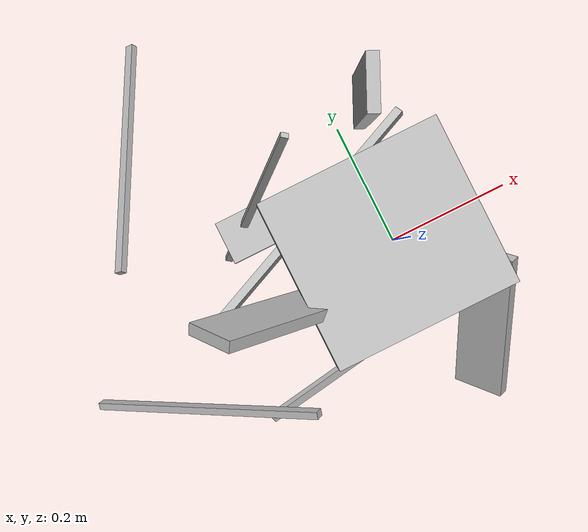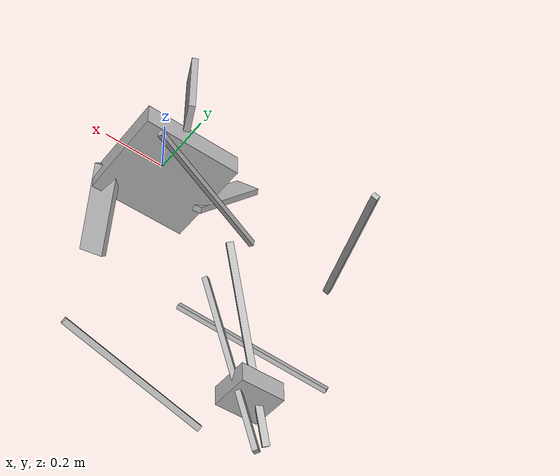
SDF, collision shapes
<?xml version="1.0" ?>
<sdf version="1.11">
  <model name="test_v7">
    <link name="base_link">
      <inertial>
        <mass>0.0001</mass>
        <inertia>
          <ixx>1e-09</ixx>
          <ixy>0</ixy>
          <ixz>0</ixz>
          <iyy>1e-09</iyy>
          <iyz>0</iyz>
          <izz>1e-09</izz>
        </inertia>
      </inertial>
    </link>
    <link name="base_link_1">
      <inertial>
        <pose>-0.006003070239091151 0.004674496431452058 -0.028233711884857057 0.0 -0.0 0.0</pose>
        <mass>18.042889875355606</mass>
        <inertia>
          <ixx>0.32440273261796404</ixx>
          <ixy>0.008885205922189693</ixy>
          <ixz>-0.02922011000023445</ixz>
          <iyy>0.3314487164427661</iyy>
          <iyz>0.02295002069471524</iyz>
          <izz>0.32271939533932287</izz>
        </inertia>
      </inertial>
      <visual name="base_link_1__body1_visual">
        <geometry>
          <mesh>
            <scale>0.01 0.01 0.01</scale>
            <uri>meshes/base_link_1/body1_visual.obj</uri>
          </mesh>
        </geometry>
      </visual>
      <collision name="base_link_1__body1_collision">
        <pose relative_to="__model__">-0.011093384856898965 0.0 -0.018000000000000002 -0.0 -1.5707963267948966 0</pose>
        <geometry>
          <box>
            <size>0.07600000000000001 0.3 0.32218676971379795</size>
          </box>
        </geometry>
      </collision>
    </link>
    <link name="base_link_1__first_link_a_1">
      <pose relative_to="__model__">0.0814330700157758 0.04701739966892985 -0.015591272532809205 -1.9972275391609096 6.511982082116048e-17 -1.0471975511965983</pose>
      <inertial>
        <pose>-0.034561370372242384 0.1131097599215081 0.17371262320711608 2.308352009621695 -0.9083188421056868 -0.6216601231088564</pose>
        <mass>0.5295834259959955</mass>
        <inertia>
          <ixx>0.010106684200346501</ixx>
          <ixy>-0.0008924610461276596</ixy>
          <ixz>-0.005906382607940689</ixz>
          <iyy>0.01613180412087601</iyy>
          <iyz>0.0002624226121057376</iyz>
          <izz>0.00782340454827245</izz>
        </inertia>
      </inertial>
      <visual name="base_link_1__first_link_a_1__body1_visual">
        <geometry>
          <mesh>
            <scale>0.01 0.01 0.01</scale>
            <uri>meshes/base_link_1/first_link_a_1/body1_visual.obj</uri>
          </mesh>
        </geometry>
      </visual>
      <collision name="base_link_1__first_link_a_1__body1_collision">
        <pose relative_to="__model__">0.21424234282929158 0.10489763530089298 -0.07875696493056726 -3.007881143079345 -1.1276749179351533 0.8170661562990996</pose>
        <geometry>
          <box>
            <size>0.019999999999999997 0.08868332403876587 0.27027085362224523</size>
          </box>
        </geometry>
      </collision>
    </link>
    <link name="base_link_1__first_link_a_1__second_link_a_1">
      <pose relative_to="__model__">-0.10290090997842143 0.06792782431931448 -0.4898391177689064 -0.25767012141722895 -0.03234384727327745 1.7652724581532457</pose>
      <inertial>
        <pose>4.252839792134866e-09 -0.281928808198703 0.13052977998059853 -0.08251161845466903 0.24646921532617458 -1.7713076571243385</pose>
        <mass>0.1360043182050376</mass>
        <inertia>
          <ixx>0.0016541566286163625</ixx>
          <ixy>-0.0003775806899707331</ixy>
          <ixz>-0.0018820979831205916</ixz>
          <iyy>0.003822382296894347</iyy>
          <iyz>-0.00031838039889015447</iyz>
          <izz>0.002299437313748748</izz>
        </inertia>
      </inertial>
      <visual name="base_link_1__first_link_a_1__second_link_a_1__body1_visual">
        <geometry>
          <mesh>
            <scale>0.01 0.01 0.01</scale>
            <uri>meshes/base_link_1/first_link_a_1/second_link_a_1/body1_visual.obj</uri>
          </mesh>
        </geometry>
      </visual>
      <collision name="base_link_1__first_link_a_1__second_link_a_1__body1_collision">
        <pose relative_to="__model__">0.13434167333342242 0.10748770751677837 -0.2931696536228003 -0.5082270942593149 -0.7498464901973657 2.6239906160661315</pose>
        <geometry>
          <box>
            <size>0.015016926864274114 0.01867045413683474 0.5199999995937753</size>
          </box>
        </geometry>
      </collision>
    </link>
    <link name="base_link_1__first_link_a_1__third_link_a_1">
      <pose relative_to="__model__">-0.13681070064014977 0.1382400812810502 -0.4847040849383448 -0.5546659991931527 0.1974815462895607 1.571249311954269</pose>
      <inertial>
        <pose>0.0008479311017124364 -0.29899464490655275 0.04687057432560915 0.1972063219991525 0.5547548139625224 -1.571318874304955</pose>
        <mass>0.1360044634313697</mass>
        <inertia>
          <ixx>0.0016541197031250468</ixx>
          <ixy>-0.00037758996911224467</ixy>
          <ixz>-0.0018820522722858982</ixz>
          <iyy>0.0038224764546560767</iyy>
          <iyz>-0.0003183882744407498</iyz>
          <izz>0.002299384723911271</izz>
        </inertia>
      </inertial>
      <visual name="base_link_1__first_link_a_1__third_link_a_1__body1_visual">
        <geometry>
          <mesh>
            <scale>0.01 0.01 0.01</scale>
            <uri>meshes/base_link_1/first_link_a_1/third_link_a_1/body1_visual.obj</uri>
          </mesh>
        </geometry>
      </visual>
      <collision name="base_link_1__first_link_a_1__third_link_a_1__body1_collision">
        <pose relative_to="__model__">0.09309086222621349 0.17940866553748827 -0.2922157314928216 -0.7029322318516242 -0.5773510969378399 2.310630356594817</pose>
        <geometry>
          <box>
            <size>0.0186602540381762 0.015000000006424298 0.5199999999999999</size>
          </box>
        </geometry>
      </collision>
    </link>
    <link name="base_link_1__first_link_b_1">
      <pose relative_to="__model__">1.7275252917504574e-06 -0.09517889837212534 -0.013326122178319405 3.141592653589793 1.059705165933835 1.5707963267948963</pose>
      <inertial>
        <pose>0.11538675872842376 -0.029759020063236764 0.17587590768321873 -2.0818874876559583 1.2461267478887538e-16 1.5707963267948966</pose>
        <mass>0.5295882688124655</mass>
        <inertia>
          <ixx>0.015823405859530584</ixx>
          <ixy>0.002068865926200475</ixy>
          <ixz>-0.0026640308168478202</ixz>
          <iyy>0.010241597950927675</iyy>
          <iyz>0.005314068298323562</iyz>
          <izz>0.008266050309257044</izz>
        </inertia>
      </inertial>
      <visual name="base_link_1__first_link_b_1__body1_visual">
        <geometry>
          <mesh>
            <scale>0.01 0.01 0.01</scale>
            <uri>meshes/base_link_1/first_link_b_1/body1_visual.obj</uri>
          </mesh>
        </geometry>
      </visual>
      <collision name="base_link_1__first_link_b_1__body1_collision">
        <pose relative_to="__model__">-0.016277545741039744 -0.23128791878975088 -0.0919880393505575 1.2203192557105937 -1.0460997572576454 -1.8209974497003067</pose>
        <geometry>
          <box>
            <size>0.020000000000000035 0.2702707998916673 0.08868323335190396</size>
          </box>
        </geometry>
      </collision>
    </link>
    <link name="base_link_1__first_link_b_1__second_link_b_1">
      <pose relative_to="__model__">-0.1644296641251588 0.0711042196270732 -0.4732785466038213 -2.5094293361301996 0.3548445462903266 1.5893327420535173</pose>
      <inertial>
        <pose>-0.2668044542208931 -0.0008479311016837097 -0.10563707333385755 -2.7741338498179275 0.6256131464513811 1.5922395198894326</pose>
        <mass>0.13600446342896286</mass>
        <inertia>
          <ixx>0.0036778053063580667</ixx>
          <ixy>0.0006878803540676561</ixy>
          <ixz>-0.0005413018798880072</ixz>
          <iyy>0.001616875078238959</iyy>
          <iyz>0.001785633942526242</iyz>
          <izz>0.0024813004967933283</izz>
        </inertia>
      </inertial>
      <visual name="base_link_1__first_link_b_1__second_link_b_1__body1_visual">
        <geometry>
          <mesh>
            <scale>0.01 0.01 0.01</scale>
            <uri>meshes/base_link_1/first_link_b_1/second_link_b_1/body1_visual.obj</uri>
          </mesh>
        </geometry>
      </visual>
      <collision name="base_link_1__first_link_b_1__second_link_b_1__body1_collision">
        <pose relative_to="__model__">-0.10031844578235759 -0.14821015797530962 -0.2996655797954941 -1.8799348774579752 -0.8873540541418109 1.4744021346994853</pose>
        <geometry>
          <box>
            <size>0.018660254036797143 0.5199999999999999 0.014999999999450769</size>
          </box>
        </geometry>
      </collision>
    </link>
    <link name="base_link_1__first_link_b_1__third_link_b_1">
      <pose relative_to="__model__">-0.08442966412515933 0.07110421962707213 -0.47327854660382057 1.0844884013145482 0.8724940906474498 2.2847173624763757</pose>
      <inertial>
        <pose>-0.266804454220893 -0.0008479311016839526 -0.10563707333385783 1.230797880511589 -0.44867905623213933 -2.056951957213915</pose>
        <mass>0.1360044634289624</mass>
        <inertia>
          <ixx>0.0036778031388118495</ixx>
          <ixy>0.0006878794084599032</ixy>
          <ixz>-0.0005413022466652769</ixz>
          <iyy>0.0016168756760061315</iyy>
          <iyz>0.0017856350665119997</iyz>
          <izz>0.0024813020665724905</izz>
        </inertia>
      </inertial>
      <visual name="base_link_1__first_link_b_1__third_link_b_1__body1_visual">
        <geometry>
          <mesh>
            <scale>0.01 0.01 0.01</scale>
            <uri>meshes/base_link_1/first_link_b_1/third_link_b_1/body1_visual.obj</uri>
          </mesh>
        </geometry>
      </visual>
      <collision name="base_link_1__first_link_b_1__third_link_b_1__body1_collision">
        <pose relative_to="__model__">-0.01556641572207302 -0.1483785098570766 -0.30171021834341305 -1.908990582595981 -0.8793506755443475 1.4368096862017126</pose>
        <geometry>
          <box>
            <size>0.018660254036797146 0.52 0.01499999999945073</size>
          </box>
        </geometry>
      </collision>
    </link>
    <link name="base_link_1__first_link_c_1">
      <pose relative_to="__model__">-0.07950925149641275 0.04590269298013458 -0.033251088548263474 1.3948537048587655 -7.261497949941477e-18 -2.094395102393199</pose>
      <inertial>
        <pose>-0.011306429528835687 -0.25526525236172015 0.07220506682655758 1.2291753476373444 1.021047325719095 2.847228553252102</pose>
        <mass>1.020041076680199</mass>
        <inertia>
          <ixx>0.04230979697218576</ixx>
          <ixy>0.002351458479355868</ixy>
          <ixz>0.011545648920689357</ixz>
          <iyy>0.04614223222284844</iyy>
          <iyz>-0.004775803306886518</iyz>
          <izz>0.007528464595276681</izz>
        </inertia>
      </inertial>
      <visual name="base_link_1__first_link_c_1__body1_visual">
        <geometry>
          <mesh>
            <scale>0.01 0.01 0.01</scale>
            <uri>meshes/base_link_1/first_link_c_1/body1_visual.obj</uri>
          </mesh>
        </geometry>
      </visual>
      <collision name="base_link_1__first_link_c_1__body1_collision">
        <pose relative_to="__model__">-0.22198741345563733 0.10936526490093114 -0.007740216102172539 2.6652446431952668 -1.355718373638851 -1.1437286292456499</pose>
        <geometry>
          <box>
            <size>0.020000000000000004 0.08868332403876586 0.27027085362224523</size>
          </box>
        </geometry>
      </collision>
    </link>
    <link name="base_link_1__first_link_c_1__second_link_c_1">
      <pose relative_to="__model__">-0.11745051890632335 0.13718417138512634 -0.5007131570297239 1.237543705597859 -0.33146568557327727 0.03613542748632826</pose>
      <inertial>
        <pose>0.0008479311017121219 0.298613426494049 0.0525170938613711 -1.2554743901405772 0.07230746496770671 -0.3257069062410521</pose>
        <mass>0.1360044634313699</mass>
        <inertia>
          <ixx>0.0034715764399213585</ixx>
          <ixy>0.0001862746422086432</ixy>
          <ixz>0.0011848350121814863</ixz>
          <iyy>0.0038026015476413204</iyy>
          <iyz>-0.0005320941011110348</iyz>
          <izz>0.0005018028941306853</izz>
        </inertia>
      </inertial>
      <visual name="base_link_1__first_link_c_1__second_link_c_1__body1_visual">
        <geometry>
          <mesh>
            <scale>0.01 0.01 0.01</scale>
            <uri>meshes/base_link_1/first_link_c_1/second_link_c_1/body1_visual.obj</uri>
          </mesh>
        </geometry>
      </visual>
      <collision name="base_link_1__first_link_c_1__second_link_c_1__body1_collision">
        <pose relative_to="__model__">-0.21417181452142983 0.18243498765238414 -0.21693141526033763 -0.9551614222782706 -1.2043727797034662 2.719487919714793</pose>
        <geometry>
          <box>
            <size>0.5199999999999999 0.01866025403774039 0.014999999999997973</size>
          </box>
        </geometry>
      </collision>
    </link>
    <link name="base_link_1__first_link_c_1__third_link_c_1">
      <pose relative_to="__model__">-0.17483679264433835 0.07571030418233855 -0.45104826836394835 1.2232600244410605 0.11855696525440695 1.464300509209502</pose>
      <inertial>
        <pose>0.013655278621398882 0.04679088097423678 0.04504026029728253 -0.17525487186113486 -1.2202056302590631 -1.2584251034286984</pose>
        <mass>0.626457271294289</mass>
        <inertia>
          <ixx>0.009284865555687902</ixx>
          <ixy>0.0005663817458824542</ixy>
          <ixz>0.004550099585425071</ixz>
          <iyy>0.011652007597582753</iyy>
          <iyz>-0.0011398997396540288</iyz>
          <izz>0.0031561182193377696</izz>
        </inertia>
      </inertial>
      <visual name="base_link_1__first_link_c_1__third_link_c_1__body1_visual">
        <geometry>
          <mesh>
            <scale>0.01 0.01 0.01</scale>
            <uri>meshes/base_link_1/first_link_c_1/third_link_c_1/body1_visual.obj</uri>
          </mesh>
        </geometry>
      </visual>
      <collision name="base_link_1__first_link_c_1__third_link_c_1__body1_collision">
        <pose relative_to="__model__">-0.25691007380074204 0.11491383213076817 -0.21816684221229113 -0.8600426645351987 -1.204372779703659 2.719487919715912</pose>
        <geometry>
          <box>
            <size>0.5200000000000001 0.015000000000745925 0.018660254040500774</size>
          </box>
        </geometry>
      </collision>
    </link>
    <link name="base_link_1__first_link_c_1__third_link_c_1__fourth_link_v2_1">
      <pose relative_to="__model__">-0.09072004033361221 0.05472580097296643 -0.45954826836394685 4.8583460987361774e-15 -6.383223185661669e-16 -2.460860982333916e-15</pose>
      <inertial>
        <pose>-0.02514560914041382 0.03312539972609821 0.01699582427331018 -4.858346098736176e-15 6.383223185661788e-16 2.460860982333913e-15</pose>
        <mass>0.4904528078629193</mass>
        <inertia>
          <ixx>0.000363507214913128</ixx>
          <ixy>5.377642775528102e-17</ixy>
          <ixz>2.7755575615628914e-17</ixz>
          <iyy>0.0003635094374573322</iyy>
          <iyz>-5.057167462574341e-10</iyz>
          <izz>0.0004810943348778178</izz>
        </inertia>
      </inertial>
      <visual name="base_link_1__first_link_c_1__third_link_c_1__fourth_link_v2_1__body1_visual">
        <geometry>
          <mesh>
            <scale>0.01 0.01 0.01</scale>
            <uri>meshes/base_link_1/first_link_c_1/third_link_c_1/fourth_link_v2_1/body1_visual.obj</uri>
          </mesh>
        </geometry>
      </visual>
      <collision name="base_link_1__first_link_c_1__third_link_c_1__fourth_link_v2_1__body1_collision">
        <pose relative_to="__model__">-0.11586564947403966 0.0939218284094051 -0.44104826836394667 -0.0 -1.5707963267948966 0</pose>
        <geometry>
          <box>
            <size>0.056999999999999815 0.1121410161513775 0.1279422863405995</size>
          </box>
        </geometry>
      </collision>
    </link>
    <joint name="base_link_1__first_link_a_1__ball_2" type="fixed">
      <pose relative_to="__model__">0.3222049061173267 0.13983906252027506 -0.13140606549323497 0.0 -0.0 0.0</pose>
      <parent>base_link_1__first_link_a_1</parent>
      <child>base_link_1__first_link_a_1__second_link_a_1</child>
      <axis/>
    </joint>
    <joint name="base_link_1__first_link_a_1__ball_3" type="fixed">
      <pose relative_to="__model__">0.2822049061173264 0.20912109482303073 -0.131406065493235 0.0 -0.0 0.0</pose>
      <parent>base_link_1__first_link_a_1</parent>
      <child>base_link_1__first_link_a_1__third_link_a_1</child>
      <axis/>
    </joint>
    <joint name="base_link_1__first_link_b_1__ball_1" type="fixed">
      <pose relative_to="__model__">-0.03999827247470824 -0.3393980646926756 -0.15028231518067162 0.0 -0.0 0.0</pose>
      <parent>base_link_1__first_link_b_1</parent>
      <child>base_link_1__first_link_b_1__second_link_b_1</child>
      <axis/>
    </joint>
    <joint name="base_link_1__first_link_b_1__ball_2" type="fixed">
      <pose relative_to="__model__">0.04000172752529176 -0.3393980646926756 -0.15028231518067162 0.0 -0.0 0.0</pose>
      <parent>base_link_1__first_link_b_1</parent>
      <child>base_link_1__first_link_b_1__third_link_b_1</child>
      <axis/>
    </joint>
    <joint name="base_link_1__first_link_c_1__third_link_c_1__ball_2" type="fixed">
      <pose relative_to="__model__">-0.17483679264433843 0.07571030418233855 -0.45104826836394835 0.0 -0.0 0.0</pose>
      <parent>base_link_1__first_link_c_1__third_link_c_1</parent>
      <child>base_link_1__first_link_c_1__third_link_c_1__fourth_link_v2_1</child>
      <axis/>
    </joint>
    <joint name="base_link_1__first_link_c_1__ball_1" type="fixed">
      <pose relative_to="__model__">-0.29825284813898234 0.218382388920403 0.015759071991919744 0.0 -0.0 0.0</pose>
      <parent>base_link_1__first_link_c_1</parent>
      <child>base_link_1__first_link_c_1__second_link_c_1</child>
      <axis/>
    </joint>
    <joint name="base_link_1__first_link_c_1__ball_2" type="fixed">
      <pose relative_to="__model__">-0.33825284813898293 0.14910035661764742 0.015759071991919744 0.0 -0.0 0.0</pose>
      <parent>base_link_1__first_link_c_1</parent>
      <child>base_link_1__first_link_c_1__third_link_c_1</child>
      <axis/>
    </joint>
    <joint name="base_link_1__first_link_c_1__ball_3" type="fixed">
      <pose relative_to="__model__">-0.13483679264433862 0.14499233648509358 -0.4510482683639465 0.0 -0.0 0.0</pose>
      <parent>base_link_1__first_link_c_1__second_link_c_1</parent>
      <child>base_link_1__first_link_c_1__third_link_c_1__fourth_link_v2_1</child>
      <axis/>
    </joint>
    <joint name="base_link_1__revolute_1" type="revolute">
      <pose relative_to="__model__">0.11008805840783363 0.052012364772533515 -0.028000000000000004 0.0 -0.0 0.0</pose>
      <parent>base_link_1</parent>
      <child>base_link_1__first_link_a_1</child>
      <axis>
        <xyz expressed_in="__model__">0.5000000000000003 -0.8660254037844385 0.0</xyz>
        <limit>
          <lower>3.141592653589793</lower>
          <upper>5.1487212933832724</upper>
        </limit>
      </axis>
    </joint>
    <joint name="base_link_1__revolute_2" type="revolute">
      <pose relative_to="__model__">-0.01 -0.12134523762075573 -0.028000000000000004 0.0 -0.0 0.0</pose>
      <parent>base_link_1</parent>
      <child>base_link_1__first_link_b_1</child>
      <axis>
        <xyz expressed_in="__model__">-1.0 0.0 0.0</xyz>
        <limit>
          <lower>-3.141592653589793</lower>
          <upper>-1.1344640137963142</upper>
        </limit>
      </axis>
    </joint>
    <joint name="base_link_1__revolute_3" type="revolute">
      <pose relative_to="__model__">-0.10008805840783364 0.0693328728482222 -0.028000000000000004 0.0 -0.0 0.0</pose>
      <parent>base_link_1</parent>
      <child>base_link_1__first_link_c_1</child>
      <axis>
        <xyz expressed_in="__model__">0.4999999999999996 0.8660254037844389 0.0</xyz>
        <limit>
          <lower>-3.141592653589793</lower>
          <upper>-1.1344640137963142</upper>
        </limit>
      </axis>
    </joint>
    <joint name="base_link_1__ball_5" type="fixed">
      <pose relative_to="__model__">-0.09689450630373944 0.14499233648509333 -0.4510482683639463 0.0 -0.0 0.0</pose>
      <parent>base_link_1__first_link_a_1__third_link_a_1</parent>
      <child>base_link_1__first_link_c_1__third_link_c_1__fourth_link_v2_1</child>
      <axis/>
    </joint>
    <joint name="base_link_1__ball_6" type="fixed">
      <pose relative_to="__model__">-0.05689450630374032 0.07571030418233848 -0.4510482683639468 0.0 -0.0 0.0</pose>
      <parent>base_link_1__first_link_a_1__second_link_a_1</parent>
      <child>base_link_1__first_link_c_1__third_link_c_1__fourth_link_v2_1</child>
      <axis/>
    </joint>
    <joint name="base_link_1__ball_7" type="fixed">
      <pose relative_to="__model__">-0.1558656494740391 0.042851320333716476 -0.45104826836394707 0.0 -0.0 0.0</pose>
      <parent>base_link_1__first_link_b_1__second_link_b_1</parent>
      <child>base_link_1__first_link_c_1__third_link_c_1__fourth_link_v2_1</child>
      <axis/>
    </joint>
    <joint name="base_link_1__ball_8" type="fixed">
      <pose relative_to="__model__">-0.07586564947403965 0.042851320333715505 -0.45104826836394646 0.0 -0.0 0.0</pose>
      <parent>base_link_1__first_link_b_1__third_link_b_1</parent>
      <child>base_link_1__first_link_c_1__third_link_c_1__fourth_link_v2_1</child>
      <axis/>
    </joint>
    <joint name="base_link_joint" type="fixed">
      <parent>base_link</parent>
      <child>base_link_1</child>
      <axis/>
    </joint>
  </model>
</sdf>
